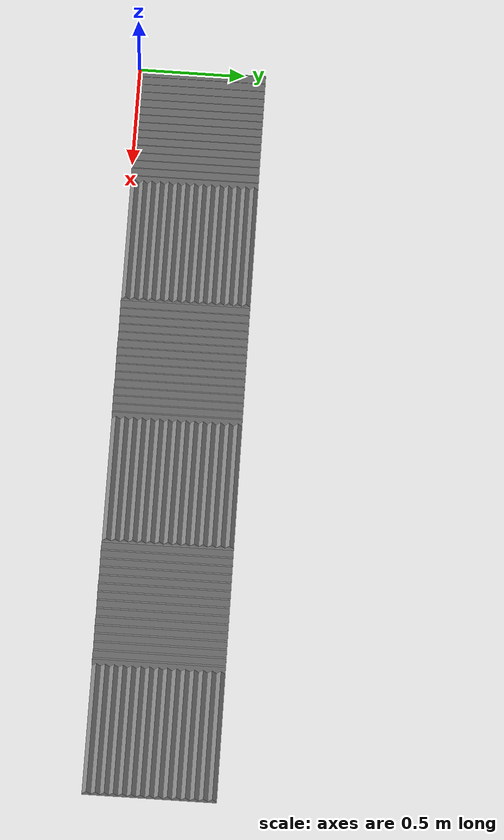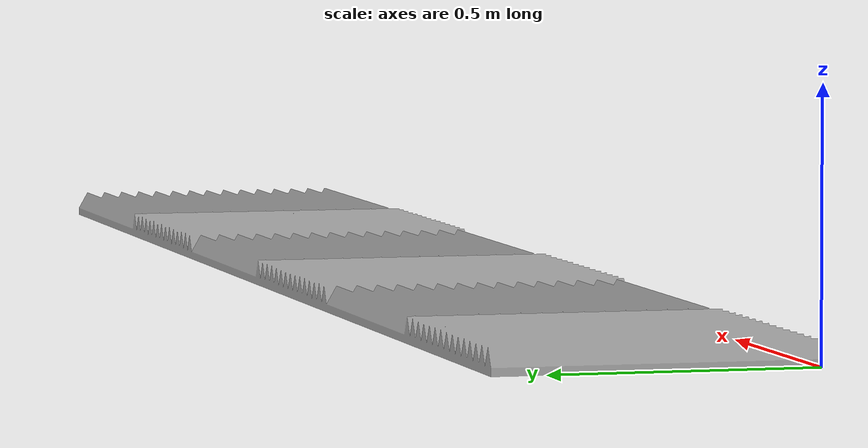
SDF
<?xml version="1.0" ?>
<sdf version="1.5">
  <!-- For now, use a 2x4 configuration for one set -->
  <model name="thinfoam1x6">
    <!-- Column -->
    <link name="link">
      <visual name="visual">
        <geometry>
          <mesh>
            <uri>model://thinfoam1x6/meshes/thinfoam1x6.stl</uri>
            <scale>0.001 0.001 0.001</scale>
          </mesh>
        </geometry>
        <material>
          <script>
            <uri>file://media/materials/scripts/gazebo.material</uri>
            <name>Gazebo/Grey</name>
          </script>
          <ambient>1 1 1 1</ambient>
        </material>
      </visual>
      <collision name="collision">
        <geometry>
          <mesh>
            <uri>model://thinfoam1x6/meshes/thinfoam1x6.stl</uri>
            <scale>0.001 0.001 0.001</scale>
          </mesh>
        </geometry>
      </collision>
      <pose>0 0 0 0 0 0</pose>
    </link>
    <static>1</static>
  </model>
</sdf>
